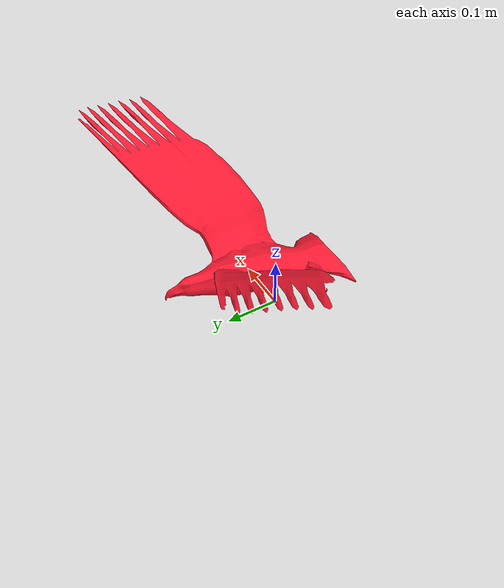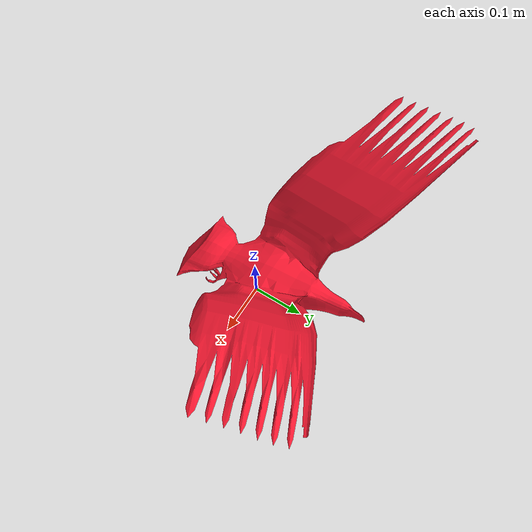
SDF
<?xml version="1.0" encoding="UTF-8"?>
<sdf version='1.6'>
    <model name='bird'>
        <link name="bird_body">
            <pose>0 0 0.1 0 0 0</pose>
            <self_collide>false</self_collide>
            <static>false</static>
            <inertial>
                <mass>2.0</mass>
                <inertia>
                <ixx>0.02166666666666667</ixx>
                <ixy>0</ixy>
                <ixz>0</ixz>
                <iyy>0.02166666666666667</iyy>
                <iyz>0</iyz>
                <izz>0.04000000000000001</izz>
                </inertia>
            </inertial>
            <gravity>true</gravity>
            <velocity_decay/>
            <visual name="bird_visual">
              <geometry>
                <mesh>
                  <uri>model://eagle/meshes/Eagle.dae</uri>
                  <scale>1 1 1</scale>
                </mesh>
              </geometry>
              <material>
                <ambient>1 0.1 0.1 1</ambient>
                <diffuse>1 0.1 0.2 1</diffuse>
                <specular>1 0 0 0</specular>
                <emissive>0.5 0 0 1</emissive>
              </material>
            </visual>
            <collision name="bird_collision">
              <geometry>
                <box>
                  <size>1 1 0.2</size>
                </box>
              </geometry>
            </collision>
          </link>
    </model>
</sdf>
